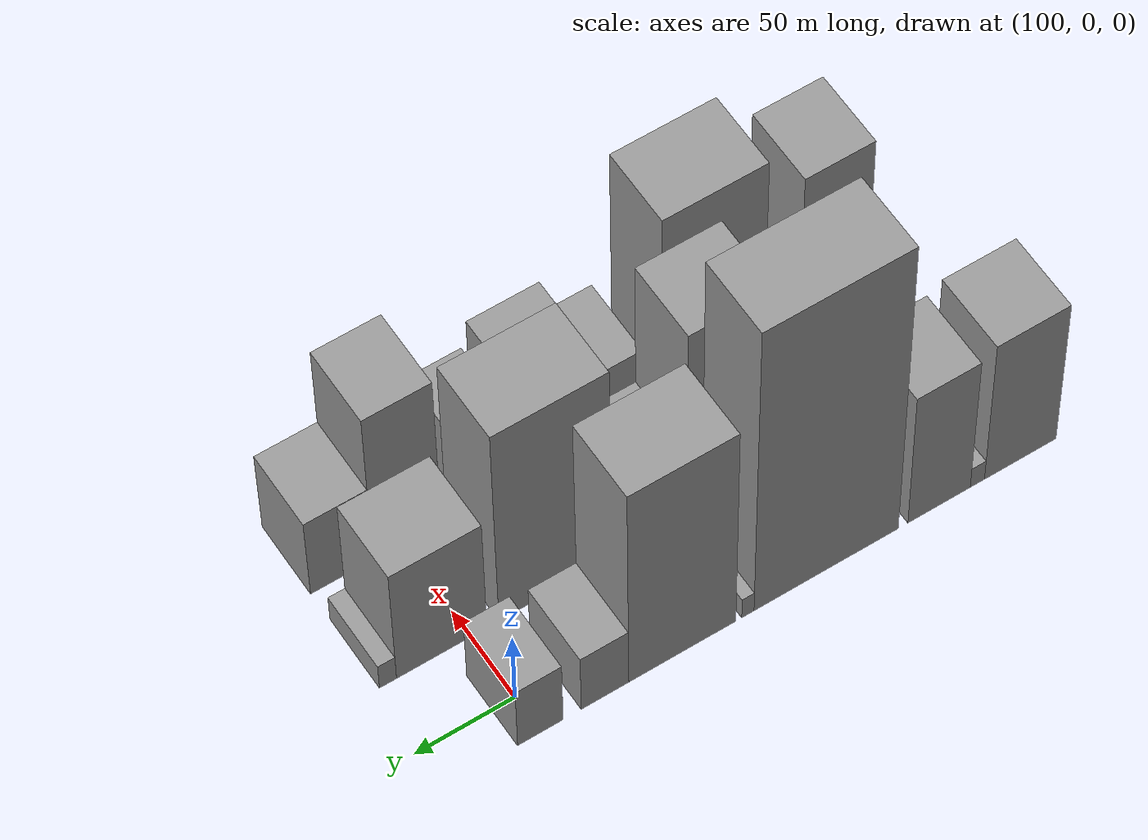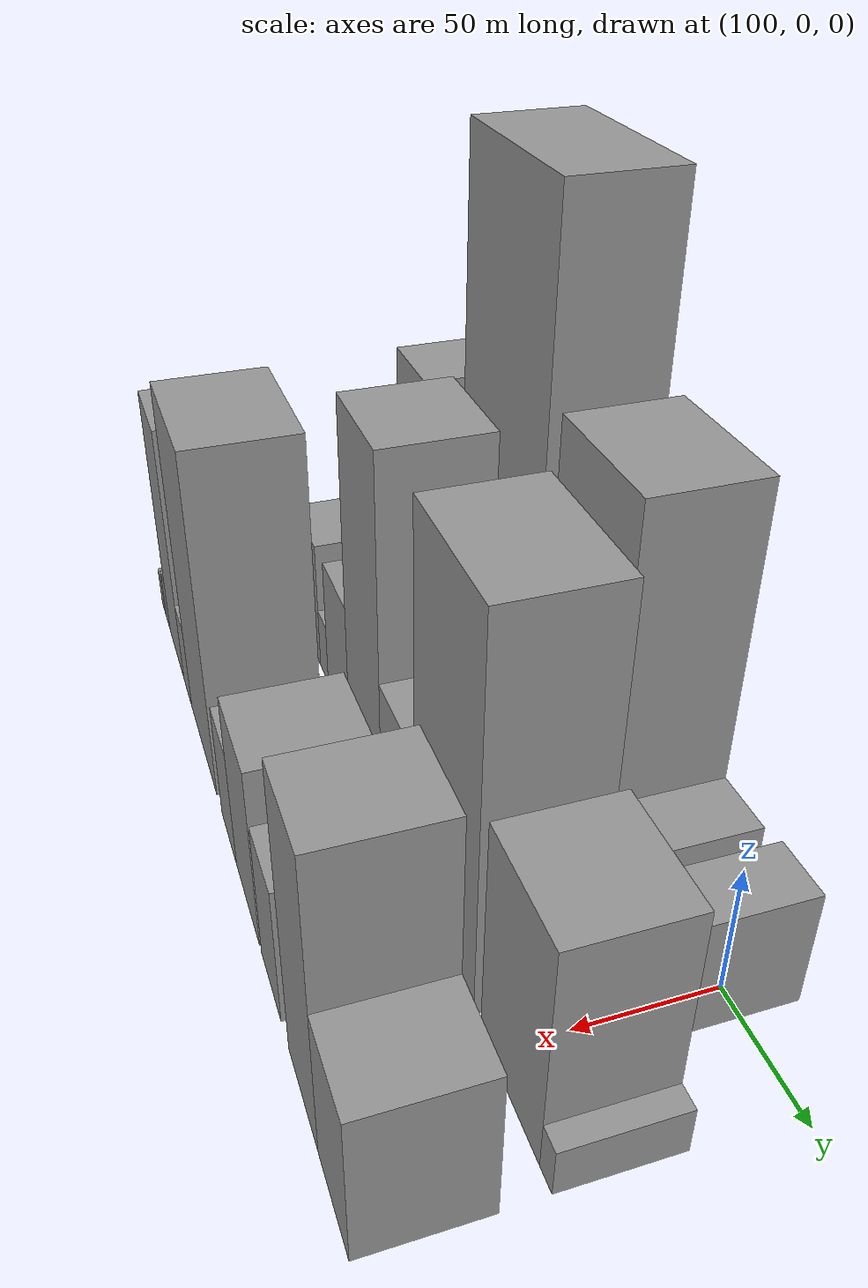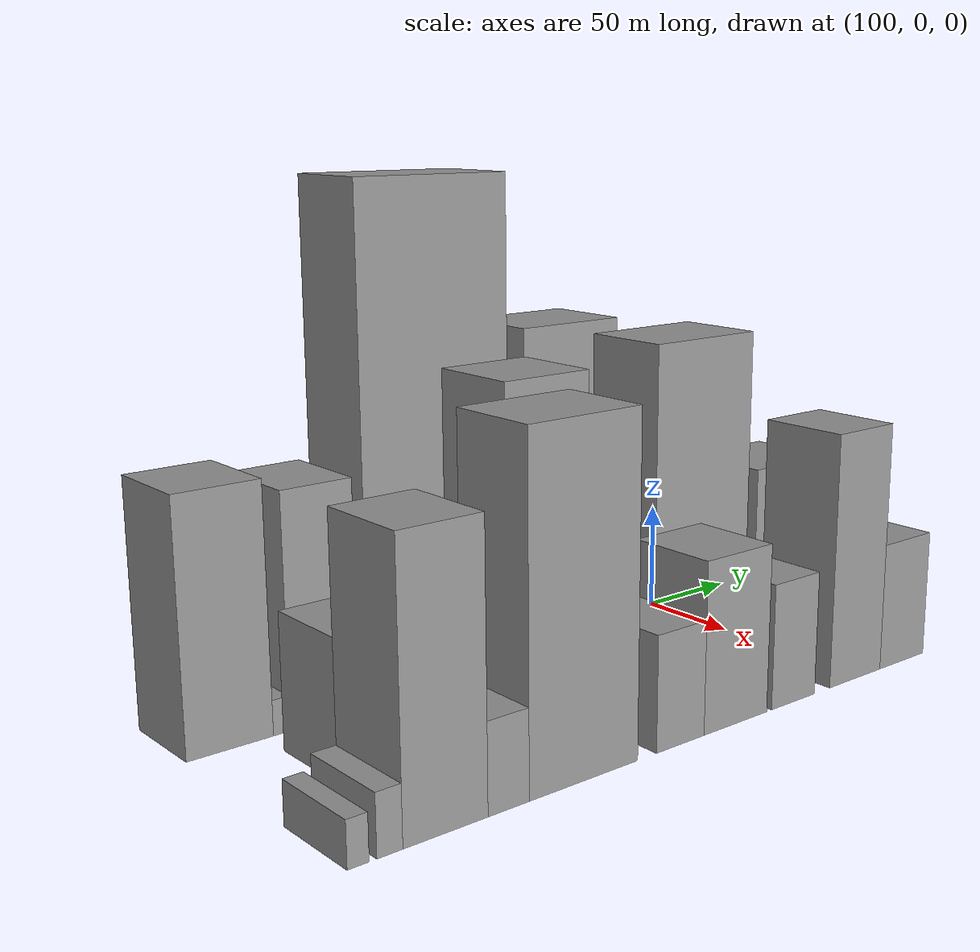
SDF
<sdf version="1.6">
 <world name="default">
  <model name="building_9">
   <static>1</static>
   <pose>100.0000 -245.3220 0 0.000000 0.000000 0.000000</pose>
   <link name="link">
    <pose>0 0 52.50 0 0 0</pose>
    <collision name="collision"><geometry><box><size>40.0000 37.7578 105.0000</size></box></geometry></collision>
    <visual name="visual">
     <cast_shadows>0</cast_shadows>
     <geometry><box><size>40.0000 37.7578 105.0000</size></box></geometry>
     <material>
      <script>
       <uri>model://grey_wall/materials/scripts</uri>
       <uri>model://grey_wall/materials/textures</uri>
       <name>vrc/grey_wall</name>
      </script>
     </material>
    </visual>
   </link>
  </model>
  <model name="building_10">
   <static>1</static>
   <pose>100.0000 -222.7115 0 0.000000 0.000000 0.000000</pose>
   <link name="link">
    <pose>0 0 7.50 0 0 0</pose>
    <collision name="collision"><geometry><box><size>40.0000 7.4633 15.0000</size></box></geometry></collision>
    <visual name="visual">
     <cast_shadows>0</cast_shadows>
     <geometry><box><size>40.0000 7.4633 15.0000</size></box></geometry>
     <material>
      <script>
       <uri>model://grey_wall/materials/scripts</uri>
       <uri>model://grey_wall/materials/textures</uri>
       <name>vrc/grey_wall</name>
      </script>
     </material>
    </visual>
   </link>
  </model>
  <model name="building_11">
   <static>1</static>
   <pose>100.0000 -202.6942 0 0.000000 0.000000 0.000000</pose>
   <link name="link">
    <pose>0 0 49.50 0 0 0</pose>
    <collision name="collision"><geometry><box><size>40.0000 32.5713 99.0000</size></box></geometry></collision>
    <visual name="visual">
     <cast_shadows>0</cast_shadows>
     <geometry><box><size>40.0000 32.5713 99.0000</size></box></geometry>
     <material>
      <script>
       <uri>model://grey_wall/materials/scripts</uri>
       <uri>model://grey_wall/materials/textures</uri>
       <name>vrc/grey_wall</name>
      </script>
     </material>
    </visual>
   </link>
  </model>
  <model name="building_12">
   <static>1</static>
   <pose>100.0000 -144.2849 0 0.000000 0.000000 0.000000</pose>
   <link name="link">
    <pose>0 0 108.00 0 0 0</pose>
    <collision name="collision"><geometry><box><size>40.0000 74.2475 216.0000</size></box></geometry></collision>
    <visual name="visual">
     <cast_shadows>0</cast_shadows>
     <geometry><box><size>40.0000 74.2475 216.0000</size></box></geometry>
     <material>
      <script>
       <uri>model://grey_wall/materials/scripts</uri>
       <uri>model://grey_wall/materials/textures</uri>
       <name>vrc/grey_wall</name>
      </script>
     </material>
    </visual>
   </link>
  </model>
  <model name="building_13">
   <static>1</static>
   <pose>100.0000 -104.0315 0 0.000000 0.000000 0.000000</pose>
   <link name="link">
    <pose>0 0 7.50 0 0 0</pose>
    <collision name="collision"><geometry><box><size>40.0000 6.2592 15.0000</size></box></geometry></collision>
    <visual name="visual">
     <cast_shadows>0</cast_shadows>
     <geometry><box><size>40.0000 6.2592 15.0000</size></box></geometry>
     <material>
      <script>
       <uri>model://grey_wall/materials/scripts</uri>
       <uri>model://grey_wall/materials/textures</uri>
       <name>vrc/grey_wall</name>
      </script>
     </material>
    </visual>
   </link>
  </model>
  <model name="building_14">
   <static>1</static>
   <pose>100.0000 -70.8796 0 0.000000 0.000000 0.000000</pose>
   <link name="link">
    <pose>0 0 75.00 0 0 0</pose>
    <collision name="collision"><geometry><box><size>40.0000 54.0445 150.0000</size></box></geometry></collision>
    <visual name="visual">
     <cast_shadows>0</cast_shadows>
     <geometry><box><size>40.0000 54.0445 150.0000</size></box></geometry>
     <material>
      <script>
       <uri>model://grey_wall/materials/scripts</uri>
       <uri>model://grey_wall/materials/textures</uri>
       <name>vrc/grey_wall</name>
      </script>
     </material>
    </visual>
   </link>
  </model>
  <model name="building_15">
   <static>1</static>
   <pose>100.0000 -31.9714 0 0.000000 0.000000 0.000000</pose>
   <link name="link">
    <pose>0 0 21.00 0 0 0</pose>
    <collision name="collision"><geometry><box><size>40.0000 23.7720 42.0000</size></box></geometry></collision>
    <visual name="visual">
     <cast_shadows>0</cast_shadows>
     <geometry><box><size>40.0000 23.7720 42.0000</size></box></geometry>
     <material>
      <script>
       <uri>model://grey_wall/materials/scripts</uri>
       <uri>model://grey_wall/materials/textures</uri>
       <name>vrc/grey_wall</name>
      </script>
     </material>
    </visual>
   </link>
  </model>
  <model name="building_16">
   <static>1</static>
   <pose>100.0000 0.2246 0 0.000000 0.000000 0.000000</pose>
   <link name="link">
    <pose>0 0 22.50 0 0 0</pose>
    <collision name="collision"><geometry><box><size>40.0000 22.6201 45.0000</size></box></geometry></collision>
    <visual name="visual">
     <cast_shadows>0</cast_shadows>
     <geometry><box><size>40.0000 22.6201 45.0000</size></box></geometry>
     <material>
      <script>
       <uri>model://grey_wall/materials/scripts</uri>
       <uri>model://grey_wall/materials/textures</uri>
       <name>vrc/grey_wall</name>
      </script>
     </material>
    </visual>
   </link>
  </model>
  <model name="building_45">
   <static>1</static>
   <pose>155.0000 -213.5299 0 0.000000 0.000000 0.000000</pose>
   <link name="link">
    <pose>0 0 28.50 0 0 0</pose>
    <collision name="collision"><geometry><box><size>40.0000 33.8022 57.0000</size></box></geometry></collision>
    <visual name="visual">
     <cast_shadows>0</cast_shadows>
     <geometry><box><size>40.0000 33.8022 57.0000</size></box></geometry>
     <material>
      <script>
       <uri>model://grey_wall/materials/scripts</uri>
       <uri>model://grey_wall/materials/textures</uri>
       <name>vrc/grey_wall</name>
      </script>
     </material>
    </visual>
   </link>
  </model>
  <model name="building_46">
   <static>1</static>
   <pose>155.0000 -190.4386 0 0.000000 0.000000 0.000000</pose>
   <link name="link">
    <pose>0 0 13.50 0 0 0</pose>
    <collision name="collision"><geometry><box><size>40.0000 12.3804 27.0000</size></box></geometry></collision>
    <visual name="visual">
     <cast_shadows>0</cast_shadows>
     <geometry><box><size>40.0000 12.3804 27.0000</size></box></geometry>
     <material>
      <script>
       <uri>model://grey_wall/materials/scripts</uri>
       <uri>model://grey_wall/materials/textures</uri>
       <name>vrc/grey_wall</name>
      </script>
     </material>
    </visual>
   </link>
  </model>
  <model name="building_47">
   <static>1</static>
   <pose>155.0000 -168.1989 0 0.000000 0.000000 0.000000</pose>
   <link name="link">
    <pose>0 0 28.50 0 0 0</pose>
    <collision name="collision"><geometry><box><size>40.0000 32.0989 57.0000</size></box></geometry></collision>
    <visual name="visual">
     <cast_shadows>0</cast_shadows>
     <geometry><box><size>40.0000 32.0989 57.0000</size></box></geometry>
     <material>
      <script>
       <uri>model://grey_wall/materials/scripts</uri>
       <uri>model://grey_wall/materials/textures</uri>
       <name>vrc/grey_wall</name>
      </script>
     </material>
    </visual>
   </link>
  </model>
  <model name="building_48">
   <static>1</static>
   <pose>155.0000 -130.7541 0 0.000000 0.000000 0.000000</pose>
   <link name="link">
    <pose>0 0 70.50 0 0 0</pose>
    <collision name="collision"><geometry><box><size>40.0000 42.7907 141.0000</size></box></geometry></collision>
    <visual name="visual">
     <cast_shadows>0</cast_shadows>
     <geometry><box><size>40.0000 42.7907 141.0000</size></box></geometry>
     <material>
      <script>
       <uri>model://grey_wall/materials/scripts</uri>
       <uri>model://grey_wall/materials/textures</uri>
       <name>vrc/grey_wall</name>
      </script>
     </material>
    </visual>
   </link>
  </model>
  <model name="building_49">
   <static>1</static>
   <pose>155.0000 -95.1985 0 0.000000 0.000000 0.000000</pose>
   <link name="link">
    <pose>0 0 27.00 0 0 0</pose>
    <collision name="collision"><geometry><box><size>40.0000 28.3204 54.0000</size></box></geometry></collision>
    <visual name="visual">
     <cast_shadows>0</cast_shadows>
     <geometry><box><size>40.0000 28.3204 54.0000</size></box></geometry>
     <material>
      <script>
       <uri>model://grey_wall/materials/scripts</uri>
       <uri>model://grey_wall/materials/textures</uri>
       <name>vrc/grey_wall</name>
      </script>
     </material>
    </visual>
   </link>
  </model>
  <model name="building_50">
   <static>1</static>
   <pose>155.0000 -42.5149 0 0.000000 0.000000 0.000000</pose>
   <link name="link">
    <pose>0 0 73.50 0 0 0</pose>
    <collision name="collision"><geometry><box><size>40.0000 57.0469 147.0000</size></box></geometry></collision>
    <visual name="visual">
     <cast_shadows>0</cast_shadows>
     <geometry><box><size>40.0000 57.0469 147.0000</size></box></geometry>
     <material>
      <script>
       <uri>model://grey_wall/materials/scripts</uri>
       <uri>model://grey_wall/materials/textures</uri>
       <name>vrc/grey_wall</name>
      </script>
     </material>
    </visual>
   </link>
  </model>
  <model name="building_51">
   <static>1</static>
   <pose>155.0000 14.4731 0 0.000000 0.000000 0.000000</pose>
   <link name="link">
    <pose>0 0 42.00 0 0 0</pose>
    <collision name="collision"><geometry><box><size>40.0000 44.9290 84.0000</size></box></geometry></collision>
    <visual name="visual">
     <cast_shadows>0</cast_shadows>
     <geometry><box><size>40.0000 44.9290 84.0000</size></box></geometry>
     <material>
      <script>
       <uri>model://grey_wall/materials/scripts</uri>
       <uri>model://grey_wall/materials/textures</uri>
       <name>vrc/grey_wall</name>
      </script>
     </material>
    </visual>
   </link>
  </model>
  <model name="building_52">
   <static>1</static>
   <pose>155.0000 41.1612 0 0.000000 0.000000 0.000000</pose>
   <link name="link">
    <pose>0 0 9.00 0 0 0</pose>
    <collision name="collision"><geometry><box><size>40.0000 8.4472 18.0000</size></box></geometry></collision>
    <visual name="visual">
     <cast_shadows>0</cast_shadows>
     <geometry><box><size>40.0000 8.4472 18.0000</size></box></geometry>
     <material>
      <script>
       <uri>model://grey_wall/materials/scripts</uri>
       <uri>model://grey_wall/materials/textures</uri>
       <name>vrc/grey_wall</name>
      </script>
     </material>
    </visual>
   </link>
  </model>
  <model name="building_80">
   <static>1</static>
   <pose>210.0000 -258.4811 0 0.000000 0.000000 0.000000</pose>
   <link name="link">
    <pose>0 0 9.00 0 0 0</pose>
    <collision name="collision"><geometry><box><size>40.0000 8.5886 18.0000</size></box></geometry></collision>
    <visual name="visual">
     <cast_shadows>0</cast_shadows>
     <geometry><box><size>40.0000 8.5886 18.0000</size></box></geometry>
     <material>
      <script>
       <uri>model://grey_wall/materials/scripts</uri>
       <uri>model://grey_wall/materials/textures</uri>
       <name>vrc/grey_wall</name>
      </script>
     </material>
    </visual>
   </link>
  </model>
  <model name="building_81">
   <static>1</static>
   <pose>210.0000 -245.9738 0 0.000000 0.000000 0.000000</pose>
   <link name="link">
    <pose>0 0 12.00 0 0 0</pose>
    <collision name="collision"><geometry><box><size>40.0000 10.4260 24.0000</size></box></geometry></collision>
    <visual name="visual">
     <cast_shadows>0</cast_shadows>
     <geometry><box><size>40.0000 10.4260 24.0000</size></box></geometry>
     <material>
      <script>
       <uri>model://grey_wall/materials/scripts</uri>
       <uri>model://grey_wall/materials/textures</uri>
       <name>vrc/grey_wall</name>
      </script>
     </material>
    </visual>
   </link>
  </model>
  <model name="building_82">
   <static>1</static>
   <pose>210.0000 -222.6759 0 0.000000 0.000000 0.000000</pose>
   <link name="link">
    <pose>0 0 55.50 0 0 0</pose>
    <collision name="collision"><geometry><box><size>40.0000 36.1696 111.0000</size></box></geometry></collision>
    <visual name="visual">
     <cast_shadows>0</cast_shadows>
     <geometry><box><size>40.0000 36.1696 111.0000</size></box></geometry>
     <material>
      <script>
       <uri>model://grey_wall/materials/scripts</uri>
       <uri>model://grey_wall/materials/textures</uri>
       <name>vrc/grey_wall</name>
      </script>
     </material>
    </visual>
   </link>
  </model>
  <model name="building_83">
   <static>1</static>
   <pose>210.0000 -195.2493 0 0.000000 0.000000 0.000000</pose>
   <link name="link">
    <pose>0 0 18.00 0 0 0</pose>
    <collision name="collision"><geometry><box><size>40.0000 18.6837 36.0000</size></box></geometry></collision>
    <visual name="visual">
     <cast_shadows>0</cast_shadows>
     <geometry><box><size>40.0000 18.6837 36.0000</size></box></geometry>
     <material>
      <script>
       <uri>model://grey_wall/materials/scripts</uri>
       <uri>model://grey_wall/materials/textures</uri>
       <name>vrc/grey_wall</name>
      </script>
     </material>
    </visual>
   </link>
  </model>
  <model name="building_84">
   <static>1</static>
   <pose>210.0000 -159.2243 0 0.000000 0.000000 0.000000</pose>
   <link name="link">
    <pose>0 0 69.00 0 0 0</pose>
    <collision name="collision"><geometry><box><size>40.0000 53.3663 138.0000</size></box></geometry></collision>
    <visual name="visual">
     <cast_shadows>0</cast_shadows>
     <geometry><box><size>40.0000 53.3663 138.0000</size></box></geometry>
     <material>
      <script>
       <uri>model://grey_wall/materials/scripts</uri>
       <uri>model://grey_wall/materials/textures</uri>
       <name>vrc/grey_wall</name>
      </script>
     </material>
    </visual>
   </link>
  </model>
  <model name="building_85">
   <static>1</static>
   <pose>210.0000 -109.4677 0 0.000000 0.000000 0.000000</pose>
   <link name="link">
    <pose>0 0 24.00 0 0 0</pose>
    <collision name="collision"><geometry><box><size>40.0000 26.1469 48.0000</size></box></geometry></collision>
    <visual name="visual">
     <cast_shadows>0</cast_shadows>
     <geometry><box><size>40.0000 26.1469 48.0000</size></box></geometry>
     <material>
      <script>
       <uri>model://grey_wall/materials/scripts</uri>
       <uri>model://grey_wall/materials/textures</uri>
       <name>vrc/grey_wall</name>
      </script>
     </material>
    </visual>
   </link>
  </model>
  <model name="building_86">
   <static>1</static>
   <pose>210.0000 -78.0036 0 0.000000 0.000000 0.000000</pose>
   <link name="link">
    <pose>0 0 36.00 0 0 0</pose>
    <collision name="collision"><geometry><box><size>40.0000 36.7814 72.0000</size></box></geometry></collision>
    <visual name="visual">
     <cast_shadows>0</cast_shadows>
     <geometry><box><size>40.0000 36.7814 72.0000</size></box></geometry>
     <material>
      <script>
       <uri>model://grey_wall/materials/scripts</uri>
       <uri>model://grey_wall/materials/textures</uri>
       <name>vrc/grey_wall</name>
      </script>
     </material>
    </visual>
   </link>
  </model>
  <model name="building_87">
   <static>1</static>
   <pose>210.0000 -43.0769 0 0.000000 0.000000 0.000000</pose>
   <link name="link">
    <pose>0 0 27.00 0 0 0</pose>
    <collision name="collision"><geometry><box><size>40.0000 27.0719 54.0000</size></box></geometry></collision>
    <visual name="visual">
     <cast_shadows>0</cast_shadows>
     <geometry><box><size>40.0000 27.0719 54.0000</size></box></geometry>
     <material>
      <script>
       <uri>model://grey_wall/materials/scripts</uri>
       <uri>model://grey_wall/materials/textures</uri>
       <name>vrc/grey_wall</name>
      </script>
     </material>
    </visual>
   </link>
  </model>
  <model name="building_88">
   <static>1</static>
   <pose>210.0000 -2.4101 0 0.000000 0.000000 0.000000</pose>
   <link name="link">
    <pose>0 0 55.50 0 0 0</pose>
    <collision name="collision"><geometry><box><size>40.0000 34.2617 111.0000</size></box></geometry></collision>
    <visual name="visual">
     <cast_shadows>0</cast_shadows>
     <geometry><box><size>40.0000 34.2617 111.0000</size></box></geometry>
     <material>
      <script>
       <uri>model://grey_wall/materials/scripts</uri>
       <uri>model://grey_wall/materials/textures</uri>
       <name>vrc/grey_wall</name>
      </script>
     </material>
    </visual>
   </link>
  </model>
  <model name="building_89">
   <static>1</static>
   <pose>210.0000 30.3048 0 0.000000 0.000000 0.000000</pose>
   <link name="link">
    <pose>0 0 28.50 0 0 0</pose>
    <collision name="collision"><geometry><box><size>40.0000 31.1681 57.0000</size></box></geometry></collision>
    <visual name="visual">
     <cast_shadows>0</cast_shadows>
     <geometry><box><size>40.0000 31.1681 57.0000</size></box></geometry>
     <material>
      <script>
       <uri>model://grey_wall/materials/scripts</uri>
       <uri>model://grey_wall/materials/textures</uri>
       <name>vrc/grey_wall</name>
      </script>
     </material>
    </visual>
   </link>
  </model>
 </world>
</sdf>
